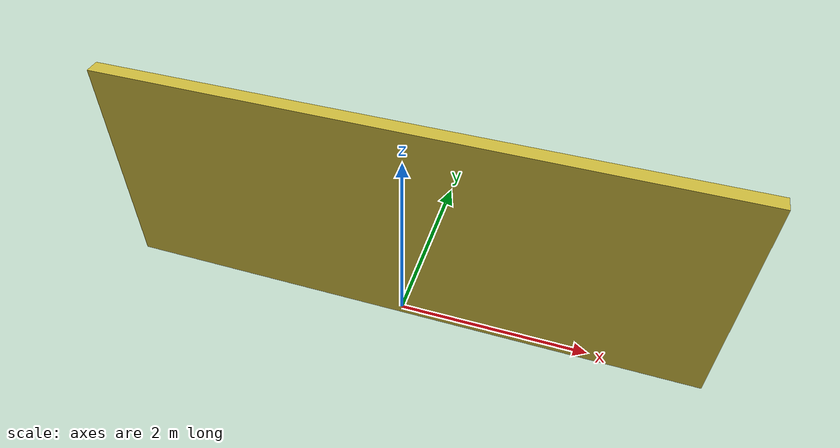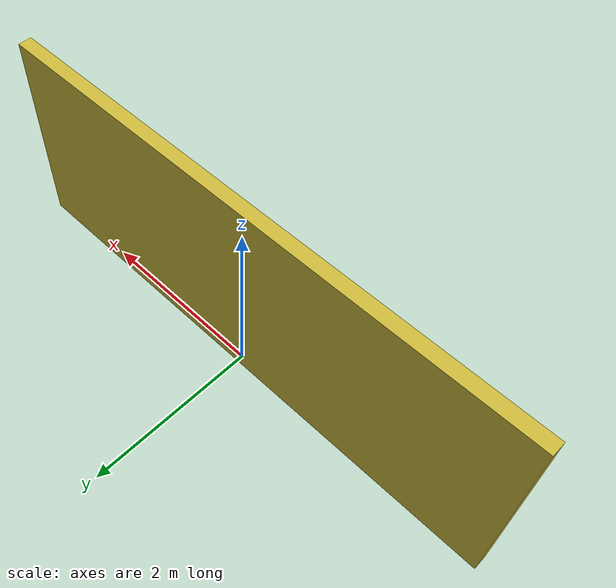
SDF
<?xml version='1.0'?>
<sdf version='1.6'>
  <model name='wall3'>
    <link name='pared1'>
      <gravity>0</gravity>
      <pose frame=''>0 0 1.2 0 0 0</pose>
      <inertial>
        <mass>10000</mass>
        <inertia>
          <ixx>99999999999</ixx>
          <ixy>0</ixy>
          <ixz>0</ixz>
          <iyy>99999999999</iyy>
          <iyz>0</iyz>
          <izz>99999999999</izz>
        </inertia>
        <pose frame=''>0 0 0 0 -0 0</pose>
      </inertial>
      <self_collide>0</self_collide>
      <kinematic>0</kinematic>
      <gravity>1</gravity>
      <visual name='visual'>
        <geometry>
          <box>
            <size>6.266 0.150783 2.4</size>
          </box>
        </geometry>
        <material>
          <script>
            <name>Gazebo/Grey</name>
            <uri>file://media/materials/scripts/gazebo.material</uri>
          </script>
          <ambient>0.97 0.9 0.23 1</ambient>
          <diffuse>0.77 0.7 0.22 1</diffuse>
          <specular>0.1 0.1 0.005 1</specular>
          <emissive>0 0 0 1</emissive>
          <shader type='vertex'>
            <normal_map>__default__</normal_map>
          </shader>
        </material>
        <pose frame=''>0 0 0 0 -0 0</pose>
        <transparency>0</transparency>
        <cast_shadows>1</cast_shadows>
      </visual>
      <collision name='collision'>
        <laser_retro>0</laser_retro>
        <max_contacts>10</max_contacts>
        <pose frame=''>0 0 0 0 -0 0</pose>
        <geometry>
          <box>
            <size>6.266 0.150783 2.4</size>
          </box>
        </geometry>
        <surface>
          <friction>
            <ode>
              <mu>100</mu>
              <mu2>100</mu2>
              <fdir1>0 0 0</fdir1>
              <slip1>0</slip1>
              <slip2>0</slip2>
            </ode>
            <torsional>
              <coefficient>1</coefficient>
              <patch_radius>0</patch_radius>
              <surface_radius>0</surface_radius>
              <use_patch_radius>1</use_patch_radius>
              <ode>
                <slip>0</slip>
              </ode>
            </torsional>
          </friction>
          <bounce>
            <restitution_coefficient>0</restitution_coefficient>
            <threshold>1e+06</threshold>
          </bounce>
          <contact>
            <collide_without_contact>0</collide_without_contact>
            <collide_without_contact_bitmask>1</collide_without_contact_bitmask>
            <collide_bitmask>1</collide_bitmask>
            <ode>
              <soft_cfm>0</soft_cfm>
              <soft_erp>0.2</soft_erp>
              <kp>1e+13</kp>
              <kd>1</kd>
              <max_vel>0.01</max_vel>
              <min_depth>0</min_depth>
            </ode>
            <bullet>
              <split_impulse>1</split_impulse>
              <split_impulse_penetration_threshold>-0.01</split_impulse_penetration_threshold>
              <soft_cfm>0</soft_cfm>
              <soft_erp>0.2</soft_erp>
              <kp>1e+13</kp>
              <kd>1</kd>
            </bullet>
          </contact>
        </surface>
      </collision>
    </link>
    <static>0</static>
    <allow_auto_disable>1</allow_auto_disable>
    <plugin name="wall2plugin" filename="libwall2plugin.so"/>
  </model>
</sdf>
